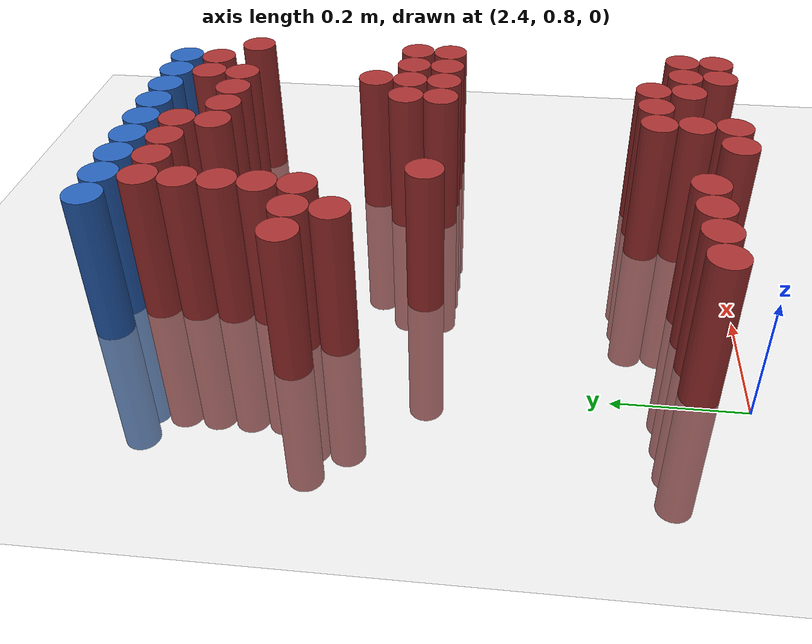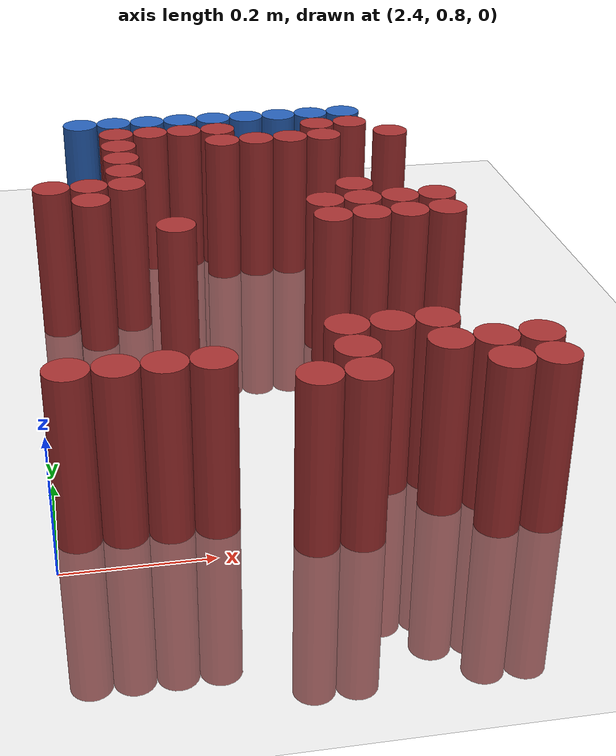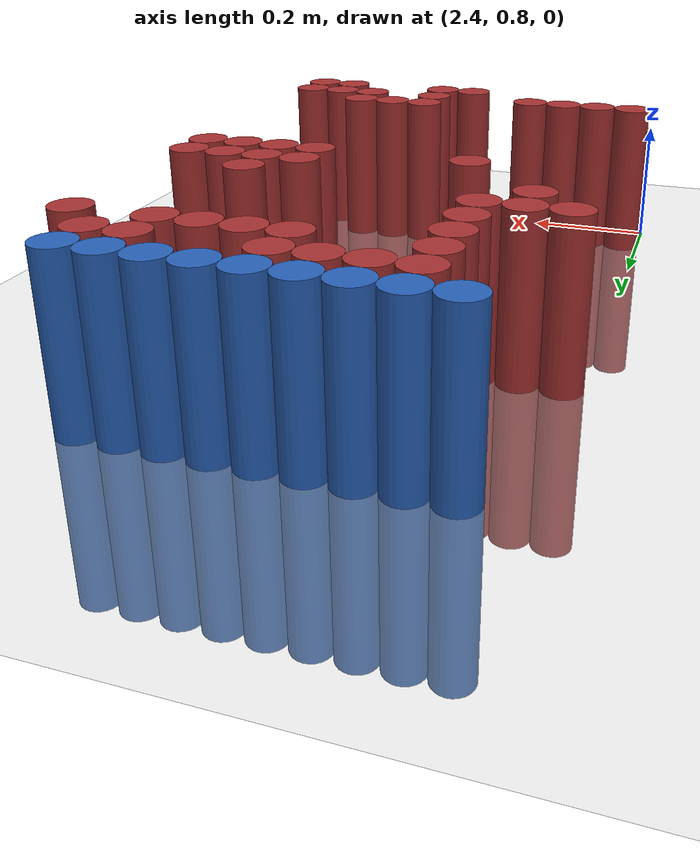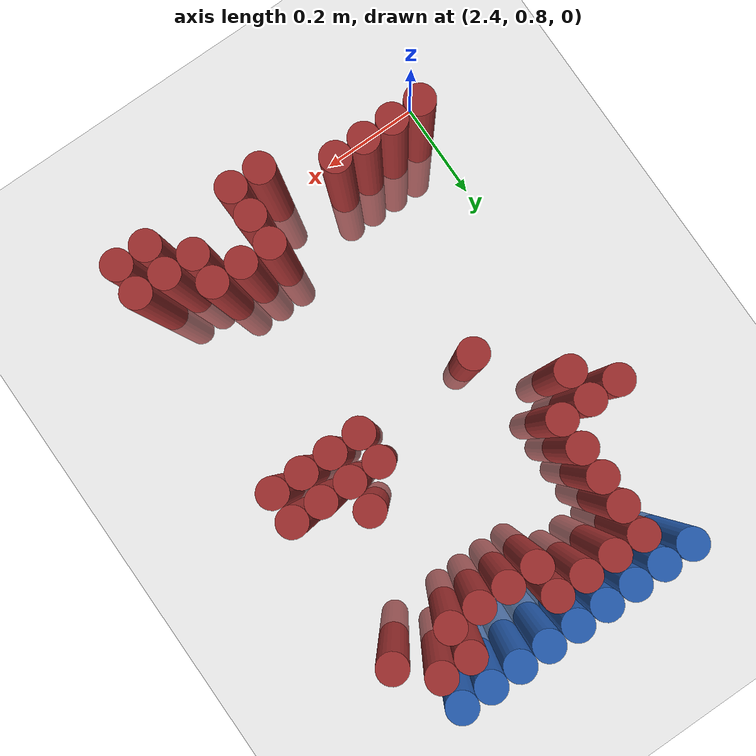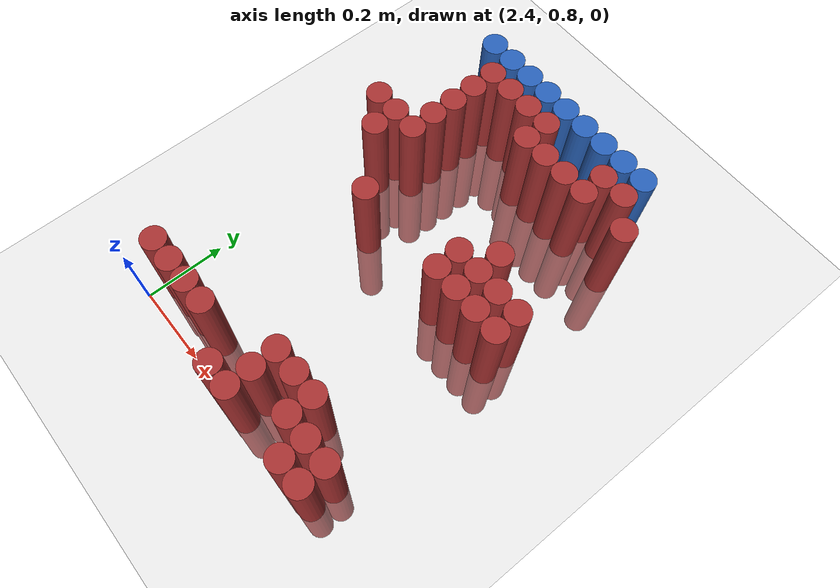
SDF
<sdf version="1.6">
 <world name="default">
  <model name="ground_plane">
   <static>1</static>
   <link name="link">
    <collision name="collision">
     <geometry><plane><normal>0 0 1</normal><size>100 100</size></plane></geometry>
     <surface><friction><ode><mu>100</mu><mu2>50</mu2></ode></friction></surface>
    </collision>
    <visual name="visual">
     <cast_shadows>0</cast_shadows>
     <geometry><plane><normal>0 0 1</normal><size>100 100</size></plane></geometry>
     <material>
      <script><uri>file://media/materials/scripts/gazebo.material</uri><name>Gazebo/Grey</name></script>
     </material>
    </visual>
   </link>
  </model>
  <model name="unit_cylinder_102">
   <static>1</static>
   <pose>2.490000 1.770000 0.000000 0.000000 0.000000 0.000000</pose>
   <link name="link">
    <inertial>
     <mass>1</mass>
     <inertia><ixx>0.145833</ixx><ixy>0</ixy><ixz>0</ixz><iyy>0.145833</iyy><iyz>0</iyz><izz>0.125</izz></inertia>
    </inertial>
    <collision name="collision">
     <geometry><cylinder><radius>0.030000</radius><length>0.5</length></cylinder></geometry>
    </collision>
    <visual name="visual">
     <geometry><cylinder><radius>0.030000</radius><length>0.5</length></cylinder></geometry>
     <material>
      <ambient>0.152000 0.379000 0.720000 1</ambient>
      <diffuse>0.152000 0.379000 0.720000 1</diffuse>
     </material>
     <material>
      <script><name>Gazebo/Grey</name><uri>file://media/materials/scripts/gazebo.material</uri></script>
     </material>
    </visual>
   </link>
  </model>
  <model name="unit_cylinder_103">
   <static>1</static>
   <pose>2.550000 1.770000 0.000000 0.000000 0.000000 0.000000</pose>
   <link name="link">
    <inertial>
     <mass>1</mass>
     <inertia><ixx>0.145833</ixx><ixy>0</ixy><ixz>0</ixz><iyy>0.145833</iyy><iyz>0</iyz><izz>0.125</izz></inertia>
    </inertial>
    <collision name="collision">
     <geometry><cylinder><radius>0.030000</radius><length>0.5</length></cylinder></geometry>
    </collision>
    <visual name="visual">
     <geometry><cylinder><radius>0.030000</radius><length>0.5</length></cylinder></geometry>
     <material>
      <ambient>0.152000 0.379000 0.720000 1</ambient>
      <diffuse>0.152000 0.379000 0.720000 1</diffuse>
     </material>
     <material>
      <script><name>Gazebo/Grey</name><uri>file://media/materials/scripts/gazebo.material</uri></script>
     </material>
    </visual>
   </link>
  </model>
  <model name="unit_cylinder_104">
   <static>1</static>
   <pose>2.610000 1.770000 0.000000 0.000000 0.000000 0.000000</pose>
   <link name="link">
    <inertial>
     <mass>1</mass>
     <inertia><ixx>0.145833</ixx><ixy>0</ixy><ixz>0</ixz><iyy>0.145833</iyy><iyz>0</iyz><izz>0.125</izz></inertia>
    </inertial>
    <collision name="collision">
     <geometry><cylinder><radius>0.030000</radius><length>0.5</length></cylinder></geometry>
    </collision>
    <visual name="visual">
     <geometry><cylinder><radius>0.030000</radius><length>0.5</length></cylinder></geometry>
     <material>
      <ambient>0.152000 0.379000 0.720000 1</ambient>
      <diffuse>0.152000 0.379000 0.720000 1</diffuse>
     </material>
     <material>
      <script><name>Gazebo/Grey</name><uri>file://media/materials/scripts/gazebo.material</uri></script>
     </material>
    </visual>
   </link>
  </model>
  <model name="unit_cylinder_105">
   <static>1</static>
   <pose>2.670000 1.770000 0.000000 0.000000 0.000000 0.000000</pose>
   <link name="link">
    <inertial>
     <mass>1</mass>
     <inertia><ixx>0.145833</ixx><ixy>0</ixy><ixz>0</ixz><iyy>0.145833</iyy><iyz>0</iyz><izz>0.125</izz></inertia>
    </inertial>
    <collision name="collision">
     <geometry><cylinder><radius>0.030000</radius><length>0.5</length></cylinder></geometry>
    </collision>
    <visual name="visual">
     <geometry><cylinder><radius>0.030000</radius><length>0.5</length></cylinder></geometry>
     <material>
      <ambient>0.152000 0.379000 0.720000 1</ambient>
      <diffuse>0.152000 0.379000 0.720000 1</diffuse>
     </material>
     <material>
      <script><name>Gazebo/Grey</name><uri>file://media/materials/scripts/gazebo.material</uri></script>
     </material>
    </visual>
   </link>
  </model>
  <model name="unit_cylinder_106">
   <static>1</static>
   <pose>2.730000 1.770000 0.000000 0.000000 0.000000 0.000000</pose>
   <link name="link">
    <inertial>
     <mass>1</mass>
     <inertia><ixx>0.145833</ixx><ixy>0</ixy><ixz>0</ixz><iyy>0.145833</iyy><iyz>0</iyz><izz>0.125</izz></inertia>
    </inertial>
    <collision name="collision">
     <geometry><cylinder><radius>0.030000</radius><length>0.5</length></cylinder></geometry>
    </collision>
    <visual name="visual">
     <geometry><cylinder><radius>0.030000</radius><length>0.5</length></cylinder></geometry>
     <material>
      <ambient>0.152000 0.379000 0.720000 1</ambient>
      <diffuse>0.152000 0.379000 0.720000 1</diffuse>
     </material>
     <material>
      <script><name>Gazebo/Grey</name><uri>file://media/materials/scripts/gazebo.material</uri></script>
     </material>
    </visual>
   </link>
  </model>
  <model name="unit_cylinder_107">
   <static>1</static>
   <pose>2.790000 1.770000 0.000000 0.000000 0.000000 0.000000</pose>
   <link name="link">
    <inertial>
     <mass>1</mass>
     <inertia><ixx>0.145833</ixx><ixy>0</ixy><ixz>0</ixz><iyy>0.145833</iyy><iyz>0</iyz><izz>0.125</izz></inertia>
    </inertial>
    <collision name="collision">
     <geometry><cylinder><radius>0.030000</radius><length>0.5</length></cylinder></geometry>
    </collision>
    <visual name="visual">
     <geometry><cylinder><radius>0.030000</radius><length>0.5</length></cylinder></geometry>
     <material>
      <ambient>0.152000 0.379000 0.720000 1</ambient>
      <diffuse>0.152000 0.379000 0.720000 1</diffuse>
     </material>
     <material>
      <script><name>Gazebo/Grey</name><uri>file://media/materials/scripts/gazebo.material</uri></script>
     </material>
    </visual>
   </link>
  </model>
  <model name="unit_cylinder_108">
   <static>1</static>
   <pose>2.850000 1.770000 0.000000 0.000000 0.000000 0.000000</pose>
   <link name="link">
    <inertial>
     <mass>1</mass>
     <inertia><ixx>0.145833</ixx><ixy>0</ixy><ixz>0</ixz><iyy>0.145833</iyy><iyz>0</iyz><izz>0.125</izz></inertia>
    </inertial>
    <collision name="collision">
     <geometry><cylinder><radius>0.030000</radius><length>0.5</length></cylinder></geometry>
    </collision>
    <visual name="visual">
     <geometry><cylinder><radius>0.030000</radius><length>0.5</length></cylinder></geometry>
     <material>
      <ambient>0.152000 0.379000 0.720000 1</ambient>
      <diffuse>0.152000 0.379000 0.720000 1</diffuse>
     </material>
     <material>
      <script><name>Gazebo/Grey</name><uri>file://media/materials/scripts/gazebo.material</uri></script>
     </material>
    </visual>
   </link>
  </model>
  <model name="unit_cylinder_109">
   <static>1</static>
   <pose>2.910000 1.770000 0.000000 0.000000 0.000000 0.000000</pose>
   <link name="link">
    <inertial>
     <mass>1</mass>
     <inertia><ixx>0.145833</ixx><ixy>0</ixy><ixz>0</ixz><iyy>0.145833</iyy><iyz>0</iyz><izz>0.125</izz></inertia>
    </inertial>
    <collision name="collision">
     <geometry><cylinder><radius>0.030000</radius><length>0.5</length></cylinder></geometry>
    </collision>
    <visual name="visual">
     <geometry><cylinder><radius>0.030000</radius><length>0.5</length></cylinder></geometry>
     <material>
      <ambient>0.152000 0.379000 0.720000 1</ambient>
      <diffuse>0.152000 0.379000 0.720000 1</diffuse>
     </material>
     <material>
      <script><name>Gazebo/Grey</name><uri>file://media/materials/scripts/gazebo.material</uri></script>
     </material>
    </visual>
   </link>
  </model>
  <model name="unit_cylinder_110">
   <static>1</static>
   <pose>2.970000 1.770000 0.000000 0.000000 0.000000 0.000000</pose>
   <link name="link">
    <inertial>
     <mass>1</mass>
     <inertia><ixx>0.145833</ixx><ixy>0</ixy><ixz>0</ixz><iyy>0.145833</iyy><iyz>0</iyz><izz>0.125</izz></inertia>
    </inertial>
    <collision name="collision">
     <geometry><cylinder><radius>0.030000</radius><length>0.5</length></cylinder></geometry>
    </collision>
    <visual name="visual">
     <geometry><cylinder><radius>0.030000</radius><length>0.5</length></cylinder></geometry>
     <material>
      <ambient>0.152000 0.379000 0.720000 1</ambient>
      <diffuse>0.152000 0.379000 0.720000 1</diffuse>
     </material>
     <material>
      <script><name>Gazebo/Grey</name><uri>file://media/materials/scripts/gazebo.material</uri></script>
     </material>
    </visual>
   </link>
  </model>
  <model name="unit_cylinder_127">
   <static>1</static>
   <pose>2.550000 1.710000 0.000000 0.000000 0.000000 0.000000</pose>
   <link name="link">
    <inertial>
     <mass>1</mass>
     <inertia><ixx>0.145833</ixx><ixy>0</ixy><ixz>0</ixz><iyy>0.145833</iyy><iyz>0</iyz><izz>0.125</izz></inertia>
    </inertial>
    <collision name="collision">
     <geometry><cylinder><radius>0.030000</radius><length>0.5</length></cylinder></geometry>
    </collision>
    <visual name="visual">
     <geometry><cylinder><radius>0.030000</radius><length>0.5</length></cylinder></geometry>
     <material>
      <ambient>0.648000 0.192000 0.192000 1</ambient>
      <diffuse>0.648000 0.192000 0.192000 1</diffuse>
     </material>
     <material>
      <script><name>Gazebo/Grey</name><uri>file://media/materials/scripts/gazebo.material</uri></script>
     </material>
    </visual>
   </link>
  </model>
  <model name="unit_cylinder_128">
   <static>1</static>
   <pose>2.610000 1.710000 0.000000 0.000000 0.000000 0.000000</pose>
   <link name="link">
    <inertial>
     <mass>1</mass>
     <inertia><ixx>0.145833</ixx><ixy>0</ixy><ixz>0</ixz><iyy>0.145833</iyy><iyz>0</iyz><izz>0.125</izz></inertia>
    </inertial>
    <collision name="collision">
     <geometry><cylinder><radius>0.030000</radius><length>0.5</length></cylinder></geometry>
    </collision>
    <visual name="visual">
     <geometry><cylinder><radius>0.030000</radius><length>0.5</length></cylinder></geometry>
     <material>
      <ambient>0.648000 0.192000 0.192000 1</ambient>
      <diffuse>0.648000 0.192000 0.192000 1</diffuse>
     </material>
     <material>
      <script><name>Gazebo/Grey</name><uri>file://media/materials/scripts/gazebo.material</uri></script>
     </material>
    </visual>
   </link>
  </model>
  <model name="unit_cylinder_129">
   <static>1</static>
   <pose>2.670000 1.710000 0.000000 0.000000 0.000000 0.000000</pose>
   <link name="link">
    <inertial>
     <mass>1</mass>
     <inertia><ixx>0.145833</ixx><ixy>0</ixy><ixz>0</ixz><iyy>0.145833</iyy><iyz>0</iyz><izz>0.125</izz></inertia>
    </inertial>
    <collision name="collision">
     <geometry><cylinder><radius>0.030000</radius><length>0.5</length></cylinder></geometry>
    </collision>
    <visual name="visual">
     <geometry><cylinder><radius>0.030000</radius><length>0.5</length></cylinder></geometry>
     <material>
      <ambient>0.648000 0.192000 0.192000 1</ambient>
      <diffuse>0.648000 0.192000 0.192000 1</diffuse>
     </material>
     <material>
      <script><name>Gazebo/Grey</name><uri>file://media/materials/scripts/gazebo.material</uri></script>
     </material>
    </visual>
   </link>
  </model>
  <model name="unit_cylinder_130">
   <static>1</static>
   <pose>2.730000 1.710000 0.000000 0.000000 0.000000 0.000000</pose>
   <link name="link">
    <inertial>
     <mass>1</mass>
     <inertia><ixx>0.145833</ixx><ixy>0</ixy><ixz>0</ixz><iyy>0.145833</iyy><iyz>0</iyz><izz>0.125</izz></inertia>
    </inertial>
    <collision name="collision">
     <geometry><cylinder><radius>0.030000</radius><length>0.5</length></cylinder></geometry>
    </collision>
    <visual name="visual">
     <geometry><cylinder><radius>0.030000</radius><length>0.5</length></cylinder></geometry>
     <material>
      <ambient>0.648000 0.192000 0.192000 1</ambient>
      <diffuse>0.648000 0.192000 0.192000 1</diffuse>
     </material>
     <material>
      <script><name>Gazebo/Grey</name><uri>file://media/materials/scripts/gazebo.material</uri></script>
     </material>
    </visual>
   </link>
  </model>
  <model name="unit_cylinder_131">
   <static>1</static>
   <pose>2.910000 1.710000 0.000000 0.000000 0.000000 0.000000</pose>
   <link name="link">
    <inertial>
     <mass>1</mass>
     <inertia><ixx>0.145833</ixx><ixy>0</ixy><ixz>0</ixz><iyy>0.145833</iyy><iyz>0</iyz><izz>0.125</izz></inertia>
    </inertial>
    <collision name="collision">
     <geometry><cylinder><radius>0.030000</radius><length>0.5</length></cylinder></geometry>
    </collision>
    <visual name="visual">
     <geometry><cylinder><radius>0.030000</radius><length>0.5</length></cylinder></geometry>
     <material>
      <ambient>0.648000 0.192000 0.192000 1</ambient>
      <diffuse>0.648000 0.192000 0.192000 1</diffuse>
     </material>
     <material>
      <script><name>Gazebo/Grey</name><uri>file://media/materials/scripts/gazebo.material</uri></script>
     </material>
    </visual>
   </link>
  </model>
  <model name="unit_cylinder_132">
   <static>1</static>
   <pose>2.970000 1.710000 0.000000 0.000000 0.000000 0.000000</pose>
   <link name="link">
    <inertial>
     <mass>1</mass>
     <inertia><ixx>0.145833</ixx><ixy>0</ixy><ixz>0</ixz><iyy>0.145833</iyy><iyz>0</iyz><izz>0.125</izz></inertia>
    </inertial>
    <collision name="collision">
     <geometry><cylinder><radius>0.030000</radius><length>0.5</length></cylinder></geometry>
    </collision>
    <visual name="visual">
     <geometry><cylinder><radius>0.030000</radius><length>0.5</length></cylinder></geometry>
     <material>
      <ambient>0.648000 0.192000 0.192000 1</ambient>
      <diffuse>0.648000 0.192000 0.192000 1</diffuse>
     </material>
     <material>
      <script><name>Gazebo/Grey</name><uri>file://media/materials/scripts/gazebo.material</uri></script>
     </material>
    </visual>
   </link>
  </model>
  <model name="unit_cylinder_142">
   <static>1</static>
   <pose>2.550000 1.650000 0.000000 0.000000 0.000000 0.000000</pose>
   <link name="link">
    <inertial>
     <mass>1</mass>
     <inertia><ixx>0.145833</ixx><ixy>0</ixy><ixz>0</ixz><iyy>0.145833</iyy><iyz>0</iyz><izz>0.125</izz></inertia>
    </inertial>
    <collision name="collision">
     <geometry><cylinder><radius>0.030000</radius><length>0.5</length></cylinder></geometry>
    </collision>
    <visual name="visual">
     <geometry><cylinder><radius>0.030000</radius><length>0.5</length></cylinder></geometry>
     <material>
      <ambient>0.648000 0.192000 0.192000 1</ambient>
      <diffuse>0.648000 0.192000 0.192000 1</diffuse>
     </material>
     <material>
      <script><name>Gazebo/Grey</name><uri>file://media/materials/scripts/gazebo.material</uri></script>
     </material>
    </visual>
   </link>
  </model>
  <model name="unit_cylinder_143">
   <static>1</static>
   <pose>2.730000 1.650000 0.000000 0.000000 0.000000 0.000000</pose>
   <link name="link">
    <inertial>
     <mass>1</mass>
     <inertia><ixx>0.145833</ixx><ixy>0</ixy><ixz>0</ixz><iyy>0.145833</iyy><iyz>0</iyz><izz>0.125</izz></inertia>
    </inertial>
    <collision name="collision">
     <geometry><cylinder><radius>0.030000</radius><length>0.5</length></cylinder></geometry>
    </collision>
    <visual name="visual">
     <geometry><cylinder><radius>0.030000</radius><length>0.5</length></cylinder></geometry>
     <material>
      <ambient>0.648000 0.192000 0.192000 1</ambient>
      <diffuse>0.648000 0.192000 0.192000 1</diffuse>
     </material>
     <material>
      <script><name>Gazebo/Grey</name><uri>file://media/materials/scripts/gazebo.material</uri></script>
     </material>
    </visual>
   </link>
  </model>
  <model name="unit_cylinder_144">
   <static>1</static>
   <pose>2.790000 1.650000 0.000000 0.000000 0.000000 0.000000</pose>
   <link name="link">
    <inertial>
     <mass>1</mass>
     <inertia><ixx>0.145833</ixx><ixy>0</ixy><ixz>0</ixz><iyy>0.145833</iyy><iyz>0</iyz><izz>0.125</izz></inertia>
    </inertial>
    <collision name="collision">
     <geometry><cylinder><radius>0.030000</radius><length>0.5</length></cylinder></geometry>
    </collision>
    <visual name="visual">
     <geometry><cylinder><radius>0.030000</radius><length>0.5</length></cylinder></geometry>
     <material>
      <ambient>0.648000 0.192000 0.192000 1</ambient>
      <diffuse>0.648000 0.192000 0.192000 1</diffuse>
     </material>
     <material>
      <script><name>Gazebo/Grey</name><uri>file://media/materials/scripts/gazebo.material</uri></script>
     </material>
    </visual>
   </link>
  </model>
  <model name="unit_cylinder_145">
   <static>1</static>
   <pose>2.850000 1.650000 0.000000 0.000000 0.000000 0.000000</pose>
   <link name="link">
    <inertial>
     <mass>1</mass>
     <inertia><ixx>0.145833</ixx><ixy>0</ixy><ixz>0</ixz><iyy>0.145833</iyy><iyz>0</iyz><izz>0.125</izz></inertia>
    </inertial>
    <collision name="collision">
     <geometry><cylinder><radius>0.030000</radius><length>0.5</length></cylinder></geometry>
    </collision>
    <visual name="visual">
     <geometry><cylinder><radius>0.030000</radius><length>0.5</length></cylinder></geometry>
     <material>
      <ambient>0.648000 0.192000 0.192000 1</ambient>
      <diffuse>0.648000 0.192000 0.192000 1</diffuse>
     </material>
     <material>
      <script><name>Gazebo/Grey</name><uri>file://media/materials/scripts/gazebo.material</uri></script>
     </material>
    </visual>
   </link>
  </model>
  <model name="unit_cylinder_146">
   <static>1</static>
   <pose>2.910000 1.650000 0.000000 0.000000 0.000000 0.000000</pose>
   <link name="link">
    <inertial>
     <mass>1</mass>
     <inertia><ixx>0.145833</ixx><ixy>0</ixy><ixz>0</ixz><iyy>0.145833</iyy><iyz>0</iyz><izz>0.125</izz></inertia>
    </inertial>
    <collision name="collision">
     <geometry><cylinder><radius>0.030000</radius><length>0.5</length></cylinder></geometry>
    </collision>
    <visual name="visual">
     <geometry><cylinder><radius>0.030000</radius><length>0.5</length></cylinder></geometry>
     <material>
      <ambient>0.648000 0.192000 0.192000 1</ambient>
      <diffuse>0.648000 0.192000 0.192000 1</diffuse>
     </material>
     <material>
      <script><name>Gazebo/Grey</name><uri>file://media/materials/scripts/gazebo.material</uri></script>
     </material>
    </visual>
   </link>
  </model>
  <model name="unit_cylinder_147">
   <static>1</static>
   <pose>3.030000 1.650000 0.000000 0.000000 0.000000 0.000000</pose>
   <link name="link">
    <inertial>
     <mass>1</mass>
     <inertia><ixx>0.145833</ixx><ixy>0</ixy><ixz>0</ixz><iyy>0.145833</iyy><iyz>0</iyz><izz>0.125</izz></inertia>
    </inertial>
    <collision name="collision">
     <geometry><cylinder><radius>0.030000</radius><length>0.5</length></cylinder></geometry>
    </collision>
    <visual name="visual">
     <geometry><cylinder><radius>0.030000</radius><length>0.5</length></cylinder></geometry>
     <material>
      <ambient>0.648000 0.192000 0.192000 1</ambient>
      <diffuse>0.648000 0.192000 0.192000 1</diffuse>
     </material>
     <material>
      <script><name>Gazebo/Grey</name><uri>file://media/materials/scripts/gazebo.material</uri></script>
     </material>
    </visual>
   </link>
  </model>
  <model name="unit_cylinder_157">
   <static>1</static>
   <pose>2.550000 1.590000 0.000000 0.000000 0.000000 0.000000</pose>
   <link name="link">
    <inertial>
     <mass>1</mass>
     <inertia><ixx>0.145833</ixx><ixy>0</ixy><ixz>0</ixz><iyy>0.145833</iyy><iyz>0</iyz><izz>0.125</izz></inertia>
    </inertial>
    <collision name="collision">
     <geometry><cylinder><radius>0.030000</radius><length>0.5</length></cylinder></geometry>
    </collision>
    <visual name="visual">
     <geometry><cylinder><radius>0.030000</radius><length>0.5</length></cylinder></geometry>
     <material>
      <ambient>0.648000 0.192000 0.192000 1</ambient>
      <diffuse>0.648000 0.192000 0.192000 1</diffuse>
     </material>
     <material>
      <script><name>Gazebo/Grey</name><uri>file://media/materials/scripts/gazebo.material</uri></script>
     </material>
    </visual>
   </link>
  </model>
  <model name="unit_cylinder_165">
   <static>1</static>
   <pose>2.550000 1.530000 0.000000 0.000000 0.000000 0.000000</pose>
   <link name="link">
    <inertial>
     <mass>1</mass>
     <inertia><ixx>0.145833</ixx><ixy>0</ixy><ixz>0</ixz><iyy>0.145833</iyy><iyz>0</iyz><izz>0.125</izz></inertia>
    </inertial>
    <collision name="collision">
     <geometry><cylinder><radius>0.030000</radius><length>0.5</length></cylinder></geometry>
    </collision>
    <visual name="visual">
     <geometry><cylinder><radius>0.030000</radius><length>0.5</length></cylinder></geometry>
     <material>
      <ambient>0.648000 0.192000 0.192000 1</ambient>
      <diffuse>0.648000 0.192000 0.192000 1</diffuse>
     </material>
     <material>
      <script><name>Gazebo/Grey</name><uri>file://media/materials/scripts/gazebo.material</uri></script>
     </material>
    </visual>
   </link>
  </model>
  <model name="unit_cylinder_168">
   <static>1</static>
   <pose>2.430000 1.470000 0.000000 0.000000 0.000000 0.000000</pose>
   <link name="link">
    <inertial>
     <mass>1</mass>
     <inertia><ixx>0.145833</ixx><ixy>0</ixy><ixz>0</ixz><iyy>0.145833</iyy><iyz>0</iyz><izz>0.125</izz></inertia>
    </inertial>
    <collision name="collision">
     <geometry><cylinder><radius>0.030000</radius><length>0.5</length></cylinder></geometry>
    </collision>
    <visual name="visual">
     <geometry><cylinder><radius>0.030000</radius><length>0.5</length></cylinder></geometry>
     <material>
      <ambient>0.648000 0.192000 0.192000 1</ambient>
      <diffuse>0.648000 0.192000 0.192000 1</diffuse>
     </material>
     <material>
      <script><name>Gazebo/Grey</name><uri>file://media/materials/scripts/gazebo.material</uri></script>
     </material>
    </visual>
   </link>
  </model>
  <model name="unit_cylinder_169">
   <static>1</static>
   <pose>2.490000 1.470000 0.000000 0.000000 0.000000 0.000000</pose>
   <link name="link">
    <inertial>
     <mass>1</mass>
     <inertia><ixx>0.145833</ixx><ixy>0</ixy><ixz>0</ixz><iyy>0.145833</iyy><iyz>0</iyz><izz>0.125</izz></inertia>
    </inertial>
    <collision name="collision">
     <geometry><cylinder><radius>0.030000</radius><length>0.5</length></cylinder></geometry>
    </collision>
    <visual name="visual">
     <geometry><cylinder><radius>0.030000</radius><length>0.5</length></cylinder></geometry>
     <material>
      <ambient>0.648000 0.192000 0.192000 1</ambient>
      <diffuse>0.648000 0.192000 0.192000 1</diffuse>
     </material>
     <material>
      <script><name>Gazebo/Grey</name><uri>file://media/materials/scripts/gazebo.material</uri></script>
     </material>
    </visual>
   </link>
  </model>
  <model name="unit_cylinder_170">
   <static>1</static>
   <pose>2.550000 1.470000 0.000000 0.000000 0.000000 0.000000</pose>
   <link name="link">
    <inertial>
     <mass>1</mass>
     <inertia><ixx>0.145833</ixx><ixy>0</ixy><ixz>0</ixz><iyy>0.145833</iyy><iyz>0</iyz><izz>0.125</izz></inertia>
    </inertial>
    <collision name="collision">
     <geometry><cylinder><radius>0.030000</radius><length>0.5</length></cylinder></geometry>
    </collision>
    <visual name="visual">
     <geometry><cylinder><radius>0.030000</radius><length>0.5</length></cylinder></geometry>
     <material>
      <ambient>0.648000 0.192000 0.192000 1</ambient>
      <diffuse>0.648000 0.192000 0.192000 1</diffuse>
     </material>
     <material>
      <script><name>Gazebo/Grey</name><uri>file://media/materials/scripts/gazebo.material</uri></script>
     </material>
    </visual>
   </link>
  </model>
  <model name="unit_cylinder_171">
   <static>1</static>
   <pose>2.490000 1.410000 0.000000 0.000000 0.000000 0.000000</pose>
   <link name="link">
    <inertial>
     <mass>1</mass>
     <inertia><ixx>0.145833</ixx><ixy>0</ixy><ixz>0</ixz><iyy>0.145833</iyy><iyz>0</iyz><izz>0.125</izz></inertia>
    </inertial>
    <collision name="collision">
     <geometry><cylinder><radius>0.030000</radius><length>0.5</length></cylinder></geometry>
    </collision>
    <visual name="visual">
     <geometry><cylinder><radius>0.030000</radius><length>0.5</length></cylinder></geometry>
     <material>
      <ambient>0.648000 0.192000 0.192000 1</ambient>
      <diffuse>0.648000 0.192000 0.192000 1</diffuse>
     </material>
     <material>
      <script><name>Gazebo/Grey</name><uri>file://media/materials/scripts/gazebo.material</uri></script>
     </material>
    </visual>
   </link>
  </model>
  <model name="unit_cylinder_172">
   <static>1</static>
   <pose>2.910000 1.410000 0.000000 0.000000 0.000000 0.000000</pose>
   <link name="link">
    <inertial>
     <mass>1</mass>
     <inertia><ixx>0.145833</ixx><ixy>0</ixy><ixz>0</ixz><iyy>0.145833</iyy><iyz>0</iyz><izz>0.125</izz></inertia>
    </inertial>
    <collision name="collision">
     <geometry><cylinder><radius>0.030000</radius><length>0.5</length></cylinder></geometry>
    </collision>
    <visual name="visual">
     <geometry><cylinder><radius>0.030000</radius><length>0.5</length></cylinder></geometry>
     <material>
      <ambient>0.648000 0.192000 0.192000 1</ambient>
      <diffuse>0.648000 0.192000 0.192000 1</diffuse>
     </material>
     <material>
      <script><name>Gazebo/Grey</name><uri>file://media/materials/scripts/gazebo.material</uri></script>
     </material>
    </visual>
   </link>
  </model>
  <model name="unit_cylinder_174">
   <static>1</static>
   <pose>2.850000 1.350000 0.000000 0.000000 0.000000 0.000000</pose>
   <link name="link">
    <inertial>
     <mass>1</mass>
     <inertia><ixx>0.145833</ixx><ixy>0</ixy><ixz>0</ixz><iyy>0.145833</iyy><iyz>0</iyz><izz>0.125</izz></inertia>
    </inertial>
    <collision name="collision">
     <geometry><cylinder><radius>0.030000</radius><length>0.5</length></cylinder></geometry>
    </collision>
    <visual name="visual">
     <geometry><cylinder><radius>0.030000</radius><length>0.5</length></cylinder></geometry>
     <material>
      <ambient>0.648000 0.192000 0.192000 1</ambient>
      <diffuse>0.648000 0.192000 0.192000 1</diffuse>
     </material>
     <material>
      <script><name>Gazebo/Grey</name><uri>file://media/materials/scripts/gazebo.material</uri></script>
     </material>
    </visual>
   </link>
  </model>
  <model name="unit_cylinder_175">
   <static>1</static>
   <pose>2.910000 1.350000 0.000000 0.000000 0.000000 0.000000</pose>
   <link name="link">
    <inertial>
     <mass>1</mass>
     <inertia><ixx>0.145833</ixx><ixy>0</ixy><ixz>0</ixz><iyy>0.145833</iyy><iyz>0</iyz><izz>0.125</izz></inertia>
    </inertial>
    <collision name="collision">
     <geometry><cylinder><radius>0.030000</radius><length>0.5</length></cylinder></geometry>
    </collision>
    <visual name="visual">
     <geometry><cylinder><radius>0.030000</radius><length>0.5</length></cylinder></geometry>
     <material>
      <ambient>0.648000 0.192000 0.192000 1</ambient>
      <diffuse>0.648000 0.192000 0.192000 1</diffuse>
     </material>
     <material>
      <script><name>Gazebo/Grey</name><uri>file://media/materials/scripts/gazebo.material</uri></script>
     </material>
    </visual>
   </link>
  </model>
  <model name="unit_cylinder_176">
   <static>1</static>
   <pose>2.970000 1.350000 0.000000 0.000000 0.000000 0.000000</pose>
   <link name="link">
    <inertial>
     <mass>1</mass>
     <inertia><ixx>0.145833</ixx><ixy>0</ixy><ixz>0</ixz><iyy>0.145833</iyy><iyz>0</iyz><izz>0.125</izz></inertia>
    </inertial>
    <collision name="collision">
     <geometry><cylinder><radius>0.030000</radius><length>0.5</length></cylinder></geometry>
    </collision>
    <visual name="visual">
     <geometry><cylinder><radius>0.030000</radius><length>0.5</length></cylinder></geometry>
     <material>
      <ambient>0.648000 0.192000 0.192000 1</ambient>
      <diffuse>0.648000 0.192000 0.192000 1</diffuse>
     </material>
     <material>
      <script><name>Gazebo/Grey</name><uri>file://media/materials/scripts/gazebo.material</uri></script>
     </material>
    </visual>
   </link>
  </model>
  <model name="unit_cylinder_177">
   <static>1</static>
   <pose>3.030000 1.350000 0.000000 0.000000 0.000000 0.000000</pose>
   <link name="link">
    <inertial>
     <mass>1</mass>
     <inertia><ixx>0.145833</ixx><ixy>0</ixy><ixz>0</ixz><iyy>0.145833</iyy><iyz>0</iyz><izz>0.125</izz></inertia>
    </inertial>
    <collision name="collision">
     <geometry><cylinder><radius>0.030000</radius><length>0.5</length></cylinder></geometry>
    </collision>
    <visual name="visual">
     <geometry><cylinder><radius>0.030000</radius><length>0.5</length></cylinder></geometry>
     <material>
      <ambient>0.648000 0.192000 0.192000 1</ambient>
      <diffuse>0.648000 0.192000 0.192000 1</diffuse>
     </material>
     <material>
      <script><name>Gazebo/Grey</name><uri>file://media/materials/scripts/gazebo.material</uri></script>
     </material>
    </visual>
   </link>
  </model>
  <model name="unit_cylinder_180">
   <static>1</static>
   <pose>2.610000 1.290000 0.000000 0.000000 0.000000 0.000000</pose>
   <link name="link">
    <inertial>
     <mass>1</mass>
     <inertia><ixx>0.145833</ixx><ixy>0</ixy><ixz>0</ixz><iyy>0.145833</iyy><iyz>0</iyz><izz>0.125</izz></inertia>
    </inertial>
    <collision name="collision">
     <geometry><cylinder><radius>0.030000</radius><length>0.5</length></cylinder></geometry>
    </collision>
    <visual name="visual">
     <geometry><cylinder><radius>0.030000</radius><length>0.5</length></cylinder></geometry>
     <material>
      <ambient>0.648000 0.192000 0.192000 1</ambient>
      <diffuse>0.648000 0.192000 0.192000 1</diffuse>
     </material>
     <material>
      <script><name>Gazebo/Grey</name><uri>file://media/materials/scripts/gazebo.material</uri></script>
     </material>
    </visual>
   </link>
  </model>
  <model name="unit_cylinder_181">
   <static>1</static>
   <pose>2.850000 1.290000 0.000000 0.000000 0.000000 0.000000</pose>
   <link name="link">
    <inertial>
     <mass>1</mass>
     <inertia><ixx>0.145833</ixx><ixy>0</ixy><ixz>0</ixz><iyy>0.145833</iyy><iyz>0</iyz><izz>0.125</izz></inertia>
    </inertial>
    <collision name="collision">
     <geometry><cylinder><radius>0.030000</radius><length>0.5</length></cylinder></geometry>
    </collision>
    <visual name="visual">
     <geometry><cylinder><radius>0.030000</radius><length>0.5</length></cylinder></geometry>
     <material>
      <ambient>0.648000 0.192000 0.192000 1</ambient>
      <diffuse>0.648000 0.192000 0.192000 1</diffuse>
     </material>
     <material>
      <script><name>Gazebo/Grey</name><uri>file://media/materials/scripts/gazebo.material</uri></script>
     </material>
    </visual>
   </link>
  </model>
  <model name="unit_cylinder_182">
   <static>1</static>
   <pose>2.910000 1.290000 0.000000 0.000000 0.000000 0.000000</pose>
   <link name="link">
    <inertial>
     <mass>1</mass>
     <inertia><ixx>0.145833</ixx><ixy>0</ixy><ixz>0</ixz><iyy>0.145833</iyy><iyz>0</iyz><izz>0.125</izz></inertia>
    </inertial>
    <collision name="collision">
     <geometry><cylinder><radius>0.030000</radius><length>0.5</length></cylinder></geometry>
    </collision>
    <visual name="visual">
     <geometry><cylinder><radius>0.030000</radius><length>0.5</length></cylinder></geometry>
     <material>
      <ambient>0.648000 0.192000 0.192000 1</ambient>
      <diffuse>0.648000 0.192000 0.192000 1</diffuse>
     </material>
     <material>
      <script><name>Gazebo/Grey</name><uri>file://media/materials/scripts/gazebo.material</uri></script>
     </material>
    </visual>
   </link>
  </model>
  <model name="unit_cylinder_183">
   <static>1</static>
   <pose>2.970000 1.290000 0.000000 0.000000 0.000000 0.000000</pose>
   <link name="link">
    <inertial>
     <mass>1</mass>
     <inertia><ixx>0.145833</ixx><ixy>0</ixy><ixz>0</ixz><iyy>0.145833</iyy><iyz>0</iyz><izz>0.125</izz></inertia>
    </inertial>
    <collision name="collision">
     <geometry><cylinder><radius>0.030000</radius><length>0.5</length></cylinder></geometry>
    </collision>
    <visual name="visual">
     <geometry><cylinder><radius>0.030000</radius><length>0.5</length></cylinder></geometry>
     <material>
      <ambient>0.648000 0.192000 0.192000 1</ambient>
      <diffuse>0.648000 0.192000 0.192000 1</diffuse>
     </material>
     <material>
      <script><name>Gazebo/Grey</name><uri>file://media/materials/scripts/gazebo.material</uri></script>
     </material>
    </visual>
   </link>
  </model>
  <model name="unit_cylinder_184">
   <static>1</static>
   <pose>3.030000 1.290000 0.000000 0.000000 0.000000 0.000000</pose>
   <link name="link">
    <inertial>
     <mass>1</mass>
     <inertia><ixx>0.145833</ixx><ixy>0</ixy><ixz>0</ixz><iyy>0.145833</iyy><iyz>0</iyz><izz>0.125</izz></inertia>
    </inertial>
    <collision name="collision">
     <geometry><cylinder><radius>0.030000</radius><length>0.5</length></cylinder></geometry>
    </collision>
    <visual name="visual">
     <geometry><cylinder><radius>0.030000</radius><length>0.5</length></cylinder></geometry>
     <material>
      <ambient>0.648000 0.192000 0.192000 1</ambient>
      <diffuse>0.648000 0.192000 0.192000 1</diffuse>
     </material>
     <material>
      <script><name>Gazebo/Grey</name><uri>file://media/materials/scripts/gazebo.material</uri></script>
     </material>
    </visual>
   </link>
  </model>
  <model name="unit_cylinder_200">
   <static>1</static>
   <pose>2.790000 0.930000 0.000000 0.000000 0.000000 0.000000</pose>
   <link name="link">
    <inertial>
     <mass>1</mass>
     <inertia><ixx>0.145833</ixx><ixy>0</ixy><ixz>0</ixz><iyy>0.145833</iyy><iyz>0</iyz><izz>0.125</izz></inertia>
    </inertial>
    <collision name="collision">
     <geometry><cylinder><radius>0.030000</radius><length>0.5</length></cylinder></geometry>
    </collision>
    <visual name="visual">
     <geometry><cylinder><radius>0.030000</radius><length>0.5</length></cylinder></geometry>
     <material>
      <ambient>0.648000 0.192000 0.192000 1</ambient>
      <diffuse>0.648000 0.192000 0.192000 1</diffuse>
     </material>
     <material>
      <script><name>Gazebo/Grey</name><uri>file://media/materials/scripts/gazebo.material</uri></script>
     </material>
    </visual>
   </link>
  </model>
  <model name="unit_cylinder_201">
   <static>1</static>
   <pose>2.850000 0.930000 0.000000 0.000000 0.000000 0.000000</pose>
   <link name="link">
    <inertial>
     <mass>1</mass>
     <inertia><ixx>0.145833</ixx><ixy>0</ixy><ixz>0</ixz><iyy>0.145833</iyy><iyz>0</iyz><izz>0.125</izz></inertia>
    </inertial>
    <collision name="collision">
     <geometry><cylinder><radius>0.030000</radius><length>0.5</length></cylinder></geometry>
    </collision>
    <visual name="visual">
     <geometry><cylinder><radius>0.030000</radius><length>0.5</length></cylinder></geometry>
     <material>
      <ambient>0.648000 0.192000 0.192000 1</ambient>
      <diffuse>0.648000 0.192000 0.192000 1</diffuse>
     </material>
     <material>
      <script><name>Gazebo/Grey</name><uri>file://media/materials/scripts/gazebo.material</uri></script>
     </material>
    </visual>
   </link>
  </model>
  <model name="unit_cylinder_202">
   <static>1</static>
   <pose>2.910000 0.930000 0.000000 0.000000 0.000000 0.000000</pose>
   <link name="link">
    <inertial>
     <mass>1</mass>
     <inertia><ixx>0.145833</ixx><ixy>0</ixy><ixz>0</ixz><iyy>0.145833</iyy><iyz>0</iyz><izz>0.125</izz></inertia>
    </inertial>
    <collision name="collision">
     <geometry><cylinder><radius>0.030000</radius><length>0.5</length></cylinder></geometry>
    </collision>
    <visual name="visual">
     <geometry><cylinder><radius>0.030000</radius><length>0.5</length></cylinder></geometry>
     <material>
      <ambient>0.648000 0.192000 0.192000 1</ambient>
      <diffuse>0.648000 0.192000 0.192000 1</diffuse>
     </material>
     <material>
      <script><name>Gazebo/Grey</name><uri>file://media/materials/scripts/gazebo.material</uri></script>
     </material>
    </visual>
   </link>
  </model>
  <model name="unit_cylinder_207">
   <static>1</static>
   <pose>2.430000 0.870000 0.000000 0.000000 0.000000 0.000000</pose>
   <link name="link">
    <inertial>
     <mass>1</mass>
     <inertia><ixx>0.145833</ixx><ixy>0</ixy><ixz>0</ixz><iyy>0.145833</iyy><iyz>0</iyz><izz>0.125</izz></inertia>
    </inertial>
    <collision name="collision">
     <geometry><cylinder><radius>0.030000</radius><length>0.5</length></cylinder></geometry>
    </collision>
    <visual name="visual">
     <geometry><cylinder><radius>0.030000</radius><length>0.5</length></cylinder></geometry>
     <material>
      <ambient>0.648000 0.192000 0.192000 1</ambient>
      <diffuse>0.648000 0.192000 0.192000 1</diffuse>
     </material>
     <material>
      <script><name>Gazebo/Grey</name><uri>file://media/materials/scripts/gazebo.material</uri></script>
     </material>
    </visual>
   </link>
  </model>
  <model name="unit_cylinder_208">
   <static>1</static>
   <pose>2.490000 0.870000 0.000000 0.000000 0.000000 0.000000</pose>
   <link name="link">
    <inertial>
     <mass>1</mass>
     <inertia><ixx>0.145833</ixx><ixy>0</ixy><ixz>0</ixz><iyy>0.145833</iyy><iyz>0</iyz><izz>0.125</izz></inertia>
    </inertial>
    <collision name="collision">
     <geometry><cylinder><radius>0.030000</radius><length>0.5</length></cylinder></geometry>
    </collision>
    <visual name="visual">
     <geometry><cylinder><radius>0.030000</radius><length>0.5</length></cylinder></geometry>
     <material>
      <ambient>0.648000 0.192000 0.192000 1</ambient>
      <diffuse>0.648000 0.192000 0.192000 1</diffuse>
     </material>
     <material>
      <script><name>Gazebo/Grey</name><uri>file://media/materials/scripts/gazebo.material</uri></script>
     </material>
    </visual>
   </link>
  </model>
  <model name="unit_cylinder_209">
   <static>1</static>
   <pose>2.550000 0.870000 0.000000 0.000000 0.000000 0.000000</pose>
   <link name="link">
    <inertial>
     <mass>1</mass>
     <inertia><ixx>0.145833</ixx><ixy>0</ixy><ixz>0</ixz><iyy>0.145833</iyy><iyz>0</iyz><izz>0.125</izz></inertia>
    </inertial>
    <collision name="collision">
     <geometry><cylinder><radius>0.030000</radius><length>0.5</length></cylinder></geometry>
    </collision>
    <visual name="visual">
     <geometry><cylinder><radius>0.030000</radius><length>0.5</length></cylinder></geometry>
     <material>
      <ambient>0.648000 0.192000 0.192000 1</ambient>
      <diffuse>0.648000 0.192000 0.192000 1</diffuse>
     </material>
     <material>
      <script><name>Gazebo/Grey</name><uri>file://media/materials/scripts/gazebo.material</uri></script>
     </material>
    </visual>
   </link>
  </model>
  <model name="unit_cylinder_210">
   <static>1</static>
   <pose>2.610000 0.870000 0.000000 0.000000 0.000000 0.000000</pose>
   <link name="link">
    <inertial>
     <mass>1</mass>
     <inertia><ixx>0.145833</ixx><ixy>0</ixy><ixz>0</ixz><iyy>0.145833</iyy><iyz>0</iyz><izz>0.125</izz></inertia>
    </inertial>
    <collision name="collision">
     <geometry><cylinder><radius>0.030000</radius><length>0.5</length></cylinder></geometry>
    </collision>
    <visual name="visual">
     <geometry><cylinder><radius>0.030000</radius><length>0.5</length></cylinder></geometry>
     <material>
      <ambient>0.648000 0.192000 0.192000 1</ambient>
      <diffuse>0.648000 0.192000 0.192000 1</diffuse>
     </material>
     <material>
      <script><name>Gazebo/Grey</name><uri>file://media/materials/scripts/gazebo.material</uri></script>
     </material>
    </visual>
   </link>
  </model>
  <model name="unit_cylinder_211">
   <static>1</static>
   <pose>2.790000 0.870000 0.000000 0.000000 0.000000 0.000000</pose>
   <link name="link">
    <inertial>
     <mass>1</mass>
     <inertia><ixx>0.145833</ixx><ixy>0</ixy><ixz>0</ixz><iyy>0.145833</iyy><iyz>0</iyz><izz>0.125</izz></inertia>
    </inertial>
    <collision name="collision">
     <geometry><cylinder><radius>0.030000</radius><length>0.5</length></cylinder></geometry>
    </collision>
    <visual name="visual">
     <geometry><cylinder><radius>0.030000</radius><length>0.5</length></cylinder></geometry>
     <material>
      <ambient>0.648000 0.192000 0.192000 1</ambient>
      <diffuse>0.648000 0.192000 0.192000 1</diffuse>
     </material>
     <material>
      <script><name>Gazebo/Grey</name><uri>file://media/materials/scripts/gazebo.material</uri></script>
     </material>
    </visual>
   </link>
  </model>
  <model name="unit_cylinder_212">
   <static>1</static>
   <pose>2.910000 0.870000 0.000000 0.000000 0.000000 0.000000</pose>
   <link name="link">
    <inertial>
     <mass>1</mass>
     <inertia><ixx>0.145833</ixx><ixy>0</ixy><ixz>0</ixz><iyy>0.145833</iyy><iyz>0</iyz><izz>0.125</izz></inertia>
    </inertial>
    <collision name="collision">
     <geometry><cylinder><radius>0.030000</radius><length>0.5</length></cylinder></geometry>
    </collision>
    <visual name="visual">
     <geometry><cylinder><radius>0.030000</radius><length>0.5</length></cylinder></geometry>
     <material>
      <ambient>0.648000 0.192000 0.192000 1</ambient>
      <diffuse>0.648000 0.192000 0.192000 1</diffuse>
     </material>
     <material>
      <script><name>Gazebo/Grey</name><uri>file://media/materials/scripts/gazebo.material</uri></script>
     </material>
    </visual>
   </link>
  </model>
  <model name="unit_cylinder_213">
   <static>1</static>
   <pose>2.970000 0.870000 0.000000 0.000000 0.000000 0.000000</pose>
   <link name="link">
    <inertial>
     <mass>1</mass>
     <inertia><ixx>0.145833</ixx><ixy>0</ixy><ixz>0</ixz><iyy>0.145833</iyy><iyz>0</iyz><izz>0.125</izz></inertia>
    </inertial>
    <collision name="collision">
     <geometry><cylinder><radius>0.030000</radius><length>0.5</length></cylinder></geometry>
    </collision>
    <visual name="visual">
     <geometry><cylinder><radius>0.030000</radius><length>0.5</length></cylinder></geometry>
     <material>
      <ambient>0.648000 0.192000 0.192000 1</ambient>
      <diffuse>0.648000 0.192000 0.192000 1</diffuse>
     </material>
     <material>
      <script><name>Gazebo/Grey</name><uri>file://media/materials/scripts/gazebo.material</uri></script>
     </material>
    </visual>
   </link>
  </model>
  <model name="unit_cylinder_214">
   <static>1</static>
   <pose>3.030000 0.870000 0.000000 0.000000 0.000000 0.000000</pose>
   <link name="link">
    <inertial>
     <mass>1</mass>
     <inertia><ixx>0.145833</ixx><ixy>0</ixy><ixz>0</ixz><iyy>0.145833</iyy><iyz>0</iyz><izz>0.125</izz></inertia>
    </inertial>
    <collision name="collision">
     <geometry><cylinder><radius>0.030000</radius><length>0.5</length></cylinder></geometry>
    </collision>
    <visual name="visual">
     <geometry><cylinder><radius>0.030000</radius><length>0.5</length></cylinder></geometry>
     <material>
      <ambient>0.648000 0.192000 0.192000 1</ambient>
      <diffuse>0.648000 0.192000 0.192000 1</diffuse>
     </material>
     <material>
      <script><name>Gazebo/Grey</name><uri>file://media/materials/scripts/gazebo.material</uri></script>
     </material>
    </visual>
   </link>
  </model>
  <model name="unit_cylinder_224">
   <static>1</static>
   <pose>2.730000 0.810000 0.000000 0.000000 0.000000 0.000000</pose>
   <link name="link">
    <inertial>
     <mass>1</mass>
     <inertia><ixx>0.145833</ixx><ixy>0</ixy><ixz>0</ixz><iyy>0.145833</iyy><iyz>0</iyz><izz>0.125</izz></inertia>
    </inertial>
    <collision name="collision">
     <geometry><cylinder><radius>0.030000</radius><length>0.5</length></cylinder></geometry>
    </collision>
    <visual name="visual">
     <geometry><cylinder><radius>0.030000</radius><length>0.5</length></cylinder></geometry>
     <material>
      <ambient>0.648000 0.192000 0.192000 1</ambient>
      <diffuse>0.648000 0.192000 0.192000 1</diffuse>
     </material>
     <material>
      <script><name>Gazebo/Grey</name><uri>file://media/materials/scripts/gazebo.material</uri></script>
     </material>
    </visual>
   </link>
  </model>
  <model name="unit_cylinder_225">
   <static>1</static>
   <pose>2.790000 0.810000 0.000000 0.000000 0.000000 0.000000</pose>
   <link name="link">
    <inertial>
     <mass>1</mass>
     <inertia><ixx>0.145833</ixx><ixy>0</ixy><ixz>0</ixz><iyy>0.145833</iyy><iyz>0</iyz><izz>0.125</izz></inertia>
    </inertial>
    <collision name="collision">
     <geometry><cylinder><radius>0.030000</radius><length>0.5</length></cylinder></geometry>
    </collision>
    <visual name="visual">
     <geometry><cylinder><radius>0.030000</radius><length>0.5</length></cylinder></geometry>
     <material>
      <ambient>0.648000 0.192000 0.192000 1</ambient>
      <diffuse>0.648000 0.192000 0.192000 1</diffuse>
     </material>
     <material>
      <script><name>Gazebo/Grey</name><uri>file://media/materials/scripts/gazebo.material</uri></script>
     </material>
    </visual>
   </link>
  </model>
  <model name="unit_cylinder_226">
   <static>1</static>
   <pose>2.970000 0.810000 0.000000 0.000000 0.000000 0.000000</pose>
   <link name="link">
    <inertial>
     <mass>1</mass>
     <inertia><ixx>0.145833</ixx><ixy>0</ixy><ixz>0</ixz><iyy>0.145833</iyy><iyz>0</iyz><izz>0.125</izz></inertia>
    </inertial>
    <collision name="collision">
     <geometry><cylinder><radius>0.030000</radius><length>0.5</length></cylinder></geometry>
    </collision>
    <visual name="visual">
     <geometry><cylinder><radius>0.030000</radius><length>0.5</length></cylinder></geometry>
     <material>
      <ambient>0.648000 0.192000 0.192000 1</ambient>
      <diffuse>0.648000 0.192000 0.192000 1</diffuse>
     </material>
     <material>
      <script><name>Gazebo/Grey</name><uri>file://media/materials/scripts/gazebo.material</uri></script>
     </material>
    </visual>
   </link>
  </model>
  <model name="unit_cylinder_227">
   <static>1</static>
   <pose>3.030000 0.810000 0.000000 0.000000 0.000000 0.000000</pose>
   <link name="link">
    <inertial>
     <mass>1</mass>
     <inertia><ixx>0.145833</ixx><ixy>0</ixy><ixz>0</ixz><iyy>0.145833</iyy><iyz>0</iyz><izz>0.125</izz></inertia>
    </inertial>
    <collision name="collision">
     <geometry><cylinder><radius>0.030000</radius><length>0.5</length></cylinder></geometry>
    </collision>
    <visual name="visual">
     <geometry><cylinder><radius>0.030000</radius><length>0.5</length></cylinder></geometry>
     <material>
      <ambient>0.648000 0.192000 0.192000 1</ambient>
      <diffuse>0.648000 0.192000 0.192000 1</diffuse>
     </material>
     <material>
      <script><name>Gazebo/Grey</name><uri>file://media/materials/scripts/gazebo.material</uri></script>
     </material>
    </visual>
   </link>
  </model>
 </world>
</sdf>
